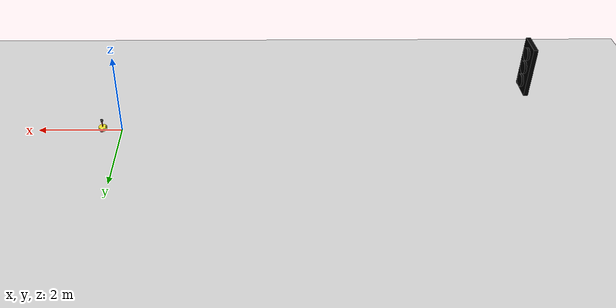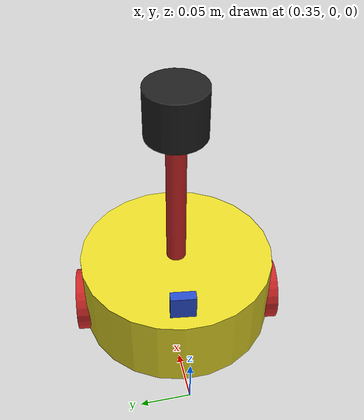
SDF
<sdf version="1.7">
 <world name="default">
  <light name="sun" type="directional">
   <pose>0 0 10 0 -0 0</pose>
   <diffuse>0.8 0.8 0.8 1</diffuse>
   <specular>0.2 0.2 0.2 1</specular>
   <attenuation>
    <range>1000</range>
    <constant>0.9</constant>
    <linear>0.01</linear>
    <quadratic>0.001</quadratic>
   </attenuation>
   <direction>-0.5 0.1 -0.9</direction>
   <spot><inner_angle>0</inner_angle><outer_angle>0</outer_angle><falloff>0</falloff></spot>
  </light>
  <model name="ground_plane">
   <static>1</static>
   <link name="link">
    <collision name="collision">
     <geometry><plane><normal>0 0 1</normal><size>100 100</size></plane></geometry>
     <surface>
      <contact><collide_bitmask>65535</collide_bitmask></contact>
      <friction><ode><mu>100</mu><mu2>50</mu2></ode></friction>
     </surface>
    </collision>
    <visual name="visual">
     <cast_shadows>0</cast_shadows>
     <geometry><plane><normal>0 0 1</normal><size>100 100</size></plane></geometry>
     <material>
      <script><uri>file://media/materials/scripts/gazebo.material</uri><name>Gazebo/Grey</name></script>
     </material>
    </visual>
   </link>
  </model>
  <model name="test_included_traffic_light">
   <pose>-9.4826 0.91443 1.16096 0.001062 -0.001055 -1e-05</pose>
   <plugin name="traffic_light_plugin" filename="libgazebo_traffic_light.so"/>
   <frame name="gazebo_traffic_light::__model__" attached_to="gazebo_traffic_light::light_fixture">
    <pose relative_to="__model__">0 -1 0 0 -0 0</pose>
   </frame>
   <static>0</static>
   <link name="gazebo_traffic_light::light_fixture">
    <gravity>0</gravity>
    <pose relative_to="gazebo_traffic_light::__model__">0 0 0 0 -0 0</pose>
    <visual name="visual">
     <pose>0 0 0.535 0 -0 0</pose>
     <geometry><box><size>0.1 0.6 1.2</size></box></geometry>
     <material><ambient>0 0 0 1</ambient><diffuse>0 0 0 1</diffuse><specular>0 0 0 1</specular></material>
    </visual>
    <collision name="collision">
     <pose>0 0 0.535 0 -0 0</pose>
     <geometry><box><size>0.1 0.6 1.2</size></box></geometry>
    </collision>
    <inertial>
     <inertia><ixx>1</ixx><ixy>0</ixy><ixz>0</ixz><iyy>1</iyy><iyz>0</iyz><izz>1</izz></inertia>
     <mass>1</mass>
    </inertial>
   </link>
   <link name="gazebo_traffic_light::green_off">
    <gravity>0</gravity>
    <pose relative_to="gazebo_traffic_light::__model__">0.075 0 0.175 0 1.5707 0</pose>
    <collision name="collision">
     <geometry><cylinder><radius>0.15</radius><length>0.05</length></cylinder></geometry>
    </collision>
    <visual name="visual">
     <geometry><cylinder><radius>0.15</radius><length>0.05</length></cylinder></geometry>
     <material>
      <ambient>0 1 0 1</ambient>
      <diffuse>0 0 0 1</diffuse>
      <specular>0 0 0 1</specular>
      <emissive>0 0 0 1</emissive>
     </material>
    </visual>
    <inertial>
     <inertia><ixx>1</ixx><ixy>0</ixy><ixz>0</ixz><iyy>1</iyy><iyz>0</iyz><izz>1</izz></inertia>
     <mass>1</mass>
    </inertial>
   </link>
   <link name="gazebo_traffic_light::green_on">
    <gravity>0</gravity>
    <pose relative_to="gazebo_traffic_light::__model__">0 0 0.175 0 1.5707 0</pose>
    <collision name="collision">
     <geometry><cylinder><radius>0.15</radius><length>0.002</length></cylinder></geometry>
    </collision>
    <visual name="visual">
     <geometry><cylinder><radius>0.15</radius><length>0.002</length></cylinder></geometry>
     <material>
      <ambient>0 0 0 1</ambient>
      <diffuse>0 0 0 1</diffuse>
      <specular>0 0 0 1</specular>
      <emissive>0 1 0 1</emissive>
     </material>
    </visual>
    <inertial>
     <inertia><ixx>1</ixx><ixy>0</ixy><ixz>0</ixz><iyy>1</iyy><iyz>0</iyz><izz>1</izz></inertia>
     <mass>1</mass>
    </inertial>
   </link>
   <link name="gazebo_traffic_light::yellow_off">
    <gravity>0</gravity>
    <pose relative_to="gazebo_traffic_light::__model__">0.075 0 0.525 0 1.5707 0</pose>
    <collision name="collision">
     <geometry><cylinder><radius>0.15</radius><length>0.05</length></cylinder></geometry>
    </collision>
    <visual name="visual">
     <geometry><cylinder><radius>0.15</radius><length>0.05</length></cylinder></geometry>
     <material>
      <ambient>1 1 0 1</ambient>
      <diffuse>0 0 0 1</diffuse>
      <specular>0 0 0 1</specular>
      <emissive>0 0 0 1</emissive>
     </material>
    </visual>
    <inertial>
     <inertia><ixx>1</ixx><ixy>0</ixy><ixz>0</ixz><iyy>1</iyy><iyz>0</iyz><izz>1</izz></inertia>
     <mass>1</mass>
    </inertial>
   </link>
   <link name="gazebo_traffic_light::yellow_on">
    <gravity>0</gravity>
    <pose relative_to="gazebo_traffic_light::__model__">0 0 0.525 0 1.5707 0</pose>
    <collision name="collision">
     <geometry><cylinder><radius>0.15</radius><length>0.002</length></cylinder></geometry>
    </collision>
    <visual name="visual">
     <geometry><cylinder><radius>0.15</radius><length>0.002</length></cylinder></geometry>
     <material>
      <ambient>0 0 0 1</ambient>
      <diffuse>0 0 0 1</diffuse>
      <specular>0 0 0 1</specular>
      <emissive>1 1 0 1</emissive>
     </material>
    </visual>
    <inertial>
     <inertia><ixx>1</ixx><ixy>0</ixy><ixz>0</ixz><iyy>1</iyy><iyz>0</iyz><izz>1</izz></inertia>
     <mass>1</mass>
    </inertial>
   </link>
   <link name="gazebo_traffic_light::red_off">
    <gravity>0</gravity>
    <pose relative_to="gazebo_traffic_light::__model__">0.075 0 0.875 0 1.5707 0</pose>
    <collision name="collision">
     <geometry><cylinder><radius>0.15</radius><length>0.05</length></cylinder></geometry>
    </collision>
    <visual name="visual">
     <geometry><cylinder><radius>0.15</radius><length>0.05</length></cylinder></geometry>
     <material>
      <ambient>1 0 0 1</ambient>
      <diffuse>0 0 0 1</diffuse>
      <specular>0 0 0 1</specular>
      <emissive>0 0 0 1</emissive>
     </material>
    </visual>
    <inertial>
     <inertia><ixx>1</ixx><ixy>0</ixy><ixz>0</ixz><iyy>1</iyy><iyz>0</iyz><izz>1</izz></inertia>
     <mass>1</mass>
    </inertial>
   </link>
   <link name="gazebo_traffic_light::red_on">
    <gravity>0</gravity>
    <pose relative_to="gazebo_traffic_light::__model__">0 0 0.875 0 1.5707 0</pose>
    <collision name="collision">
     <geometry><cylinder><radius>0.15</radius><length>0.002</length></cylinder></geometry>
    </collision>
    <visual name="visual">
     <geometry><cylinder><radius>0.15</radius><length>0.002</length></cylinder></geometry>
     <material>
      <ambient>0 0 0 1</ambient>
      <diffuse>0 0 0 1</diffuse>
      <specular>0 0 0 1</specular>
      <emissive>1 0 0 1</emissive>
     </material>
    </visual>
    <inertial>
     <inertia><ixx>1</ixx><ixy>0</ixy><ixz>0</ixz><iyy>1</iyy><iyz>0</iyz><izz>1</izz></inertia>
     <mass>1</mass>
    </inertial>
   </link>
   <joint name="gazebo_traffic_light::green_switch" type="prismatic">
    <parent>gazebo_traffic_light::green_off</parent>
    <child>gazebo_traffic_light::green_on</child>
    <axis>
     <xyz>0 0 1</xyz>
     <limit><lower>0</lower><upper>0.101</upper></limit>
     <dynamics><spring_reference>0</spring_reference><spring_stiffness>0</spring_stiffness></dynamics>
    </axis>
   </joint>
   <joint name="gazebo_traffic_light::green_base" type="fixed">
    <parent>gazebo_traffic_light::light_fixture</parent>
    <child>gazebo_traffic_light::green_off</child>
   </joint>
   <joint name="gazebo_traffic_light::yellow_switch" type="prismatic">
    <parent>gazebo_traffic_light::yellow_off</parent>
    <child>gazebo_traffic_light::yellow_on</child>
    <axis>
     <xyz>0 0 1</xyz>
     <limit><lower>0</lower><upper>0.101</upper></limit>
     <dynamics><spring_reference>0</spring_reference><spring_stiffness>0</spring_stiffness></dynamics>
    </axis>
   </joint>
   <joint name="gazebo_traffic_light::yellow_base" type="fixed">
    <parent>gazebo_traffic_light::light_fixture</parent>
    <child>gazebo_traffic_light::yellow_off</child>
   </joint>
   <joint name="gazebo_traffic_light::red_switch" type="prismatic">
    <parent>gazebo_traffic_light::red_off</parent>
    <child>gazebo_traffic_light::red_on</child>
    <axis>
     <xyz>0 0 1</xyz>
     <limit><lower>0</lower><upper>0.101</upper></limit>
     <dynamics><spring_reference>0</spring_reference><spring_stiffness>0</spring_stiffness></dynamics>
    </axis>
   </joint>
   <joint name="gazebo_traffic_light::red_base" type="fixed">
    <parent>gazebo_traffic_light::light_fixture</parent>
    <child>gazebo_traffic_light::red_off</child>
   </joint>
  </model>
  <gravity>0 0 -9.8</gravity>
  <magnetic_field>6e-06 2.3e-05 -4.2e-05</magnetic_field>
  <atmosphere type="adiabatic"/>
  <physics type="ode">
   <max_step_size>0.001</max_step_size>
   <real_time_factor>1</real_time_factor>
   <real_time_update_rate>1000</real_time_update_rate>
  </physics>
  <scene><ambient>0.4 0.4 0.4 1</ambient><background>0.7 0.7 0.7 1</background><shadows>1</shadows></scene>
  <spherical_coordinates>
   <surface_model>EARTH_WGS84</surface_model>
   <latitude_deg>0</latitude_deg>
   <longitude_deg>0</longitude_deg>
   <elevation>0</elevation>
   <heading_deg>0</heading_deg>
  </spherical_coordinates>
  <model name="mycar">
   <link name="base_footprint">
    <inertial>
     <pose>0.00125 0 0.083867 0 -0 0</pose>
     <mass>0.64</mass>
     <inertia>
      <ixx>0.00392376</ixx>
      <ixy>0</ixy>
      <ixz>-1.89062e-05</ixz>
      <iyy>0.00398676</iyy>
      <iyz>0</iyz>
      <izz>0.00258254</izz>
     </inertia>
    </inertial>
    <collision name="base_footprint_fixed_joint_lump__base_link_collision">
     <pose>0 0 0.055 0 -0 0</pose>
     <geometry><cylinder><length>0.08</length><radius>0.1</radius></cylinder></geometry>
    </collision>
    <collision name="base_footprint_fixed_joint_lump__camera_collision_1">
     <pose>0.08 0 0.1075 0 -0 0</pose>
     <geometry><box><size>0.01 0.025 0.025</size></box></geometry>
    </collision>
    <collision name="base_footprint_fixed_joint_lump__support_collision_2">
     <pose>0 0 0.17 0 -0 0</pose>
     <geometry><cylinder><length>0.15</length><radius>0.01</radius></cylinder></geometry>
    </collision>
    <collision name="base_footprint_fixed_joint_lump__laser_collision_3">
     <pose>0 0 0.27 0 -0 0</pose>
     <geometry><cylinder><length>0.05</length><radius>0.03</radius></cylinder></geometry>
    </collision>
    <visual name="base_footprint_visual"><geometry><sphere><radius>0.0001</radius></sphere></geometry></visual>
    <visual name="base_footprint_fixed_joint_lump__base_link_visual_1">
     <pose>0 0 0.055 0 -0 0</pose>
     <geometry><cylinder><length>0.08</length><radius>0.1</radius></cylinder></geometry>
     <material>
      <script><name>Gazebo/Yellow</name><uri>file://media/materials/scripts/gazebo.material</uri></script>
     </material>
    </visual>
    <visual name="base_footprint_fixed_joint_lump__camera_visual_2">
     <pose>0.08 0 0.1075 0 -0 0</pose>
     <geometry><box><size>0.01 0.025 0.025</size></box></geometry>
     <material>
      <script><name>Gazebo/Blue</name><uri>file://media/materials/scripts/gazebo.material</uri></script>
     </material>
    </visual>
    <visual name="base_footprint_fixed_joint_lump__support_visual_3">
     <pose>0 0 0.17 0 -0 0</pose>
     <geometry><cylinder><length>0.15</length><radius>0.01</radius></cylinder></geometry>
     <material>
      <script><name>Gazebo/Red</name><uri>file://media/materials/scripts/gazebo.material</uri></script>
     </material>
    </visual>
    <visual name="base_footprint_fixed_joint_lump__laser_visual_4">
     <pose>0 0 0.27 0 -0 0</pose>
     <geometry><cylinder><length>0.05</length><radius>0.03</radius></cylinder></geometry>
     <material>
      <script><name>Gazebo/Black</name><uri>file://media/materials/scripts/gazebo.material</uri></script>
     </material>
    </visual>
    <sensor name="camera_node" type="camera">
     <update_rate>2</update_rate>
     <camera name="head">
      <horizontal_fov>1.39626</horizontal_fov>
      <image><width>1280</width><height>720</height><format>R8G8B8</format></image>
      <clip><near>0.02</near><far>300</far></clip>
      <noise><type>gaussian</type><mean>0</mean><stddev>0.007</stddev></noise>
     </camera>
     <plugin name="gazebo_camera" filename="libgazebo_ros_camera.so">
      <alwaysOn>1</alwaysOn>
      <updateRate>0.0</updateRate>
      <cameraName>/camera</cameraName>
      <imageTopicName>image_raw</imageTopicName>
      <cameraInfoTopicName>camera_info</cameraInfoTopicName>
      <frameName>camera</frameName>
      <hackBaseline>0.07</hackBaseline>
      <distortionK1>0.0</distortionK1>
      <distortionK2>0.0</distortionK2>
      <distortionK3>0.0</distortionK3>
      <distortionT1>0.0</distortionT1>
      <distortionT2>0.0</distortionT2>
      <robotNamespace>/</robotNamespace>
     </plugin>
     <pose>0.08 0 0.1075 0 -0 0</pose>
    </sensor>
    <sensor name="camera" type="depth">
     <always_on>1</always_on>
     <update_rate>20</update_rate>
     <camera>
      <horizontal_fov>1.0472</horizontal_fov>
      <image><format>R8G8B8</format><width>640</width><height>480</height></image>
      <clip><near>0.05</near><far>8</far></clip>
     </camera>
     <plugin name="kinect_camera_controller" filename="libgazebo_ros_openni_kinect.so">
      <cameraName>camera</cameraName>
      <alwaysOn>1</alwaysOn>
      <updateRate>10</updateRate>
      <imageTopicName>rgb/image_raw</imageTopicName>
      <depthImageTopicName>depth/image_raw</depthImageTopicName>
      <pointCloudTopicName>depth/points</pointCloudTopicName>
      <cameraInfoTopicName>rgb/camera_info</cameraInfoTopicName>
      <depthImageCameraInfoTopicName>depth/camera_info</depthImageCameraInfoTopicName>
      <frameName>support_depth</frameName>
      <baseline>0.1</baseline>
      <distortion_k1>0.0</distortion_k1>
      <distortion_k2>0.0</distortion_k2>
      <distortion_k3>0.0</distortion_k3>
      <distortion_t1>0.0</distortion_t1>
      <distortion_t2>0.0</distortion_t2>
      <pointCloudCutoff>0.4</pointCloudCutoff>
      <robotNamespace>/</robotNamespace>
     </plugin>
     <pose>0 0 0.17 0 -0 0</pose>
    </sensor>
    <sensor name="rplidar" type="ray">
     <visualize>1</visualize>
     <update_rate>5.5</update_rate>
     <ray>
      <scan>
       <horizontal>
        <samples>360</samples>
        <resolution>3</resolution>
        <min_angle>-3</min_angle>
        <max_angle>1</max_angle>
       </horizontal>
       <vertical><samples>1</samples><min_angle>0</min_angle><max_angle>0</max_angle></vertical>
      </scan>
      <range><min>0.1</min><max>30</max><resolution>0.01</resolution></range>
      <noise><type>gaussian</type><mean>0</mean><stddev>0.01</stddev></noise>
     </ray>
     <plugin name="gazebo_rplidar" filename="libgazebo_ros_laser.so">
      <topicName>/scan</topicName>
      <frameName>laser</frameName>
      <robotNamespace>/</robotNamespace>
     </plugin>
     <pose>0 0 0.27 0 -0 0</pose>
    </sensor>
   </link>
   <joint name="back2link" type="revolute">
    <pose relative_to="base_footprint">-0.08 0 0.0075 0 -0 0</pose>
    <parent>base_footprint</parent>
    <child>back_wheel</child>
    <axis>
     <xyz>0 1 0</xyz>
     <limit><lower>-1e+16</lower><upper>1e+16</upper></limit>
     <dynamics><spring_reference>0</spring_reference><spring_stiffness>0</spring_stiffness></dynamics>
    </axis>
   </joint>
   <link name="back_wheel">
    <pose relative_to="back2link">0 0 0 0 -0 0</pose>
    <inertial>
     <mass>0.01</mass>
     <inertia>
      <ixx>2.25e-07</ixx>
      <ixy>0</ixy>
      <ixz>0</ixz>
      <iyy>2.25e-07</iyy>
      <iyz>0</iyz>
      <izz>2.25e-07</izz>
     </inertia>
    </inertial>
    <collision name="back_wheel_collision">
     <geometry><sphere><radius>0.0075</radius></sphere></geometry>
    </collision>
    <visual name="back_wheel_visual">
     <geometry><sphere><radius>0.0075</radius></sphere></geometry>
     <material>
      <script><name>Gazebo/Red</name><uri>file://media/materials/scripts/gazebo.material</uri></script>
     </material>
    </visual>
   </link>
   <joint name="front2link" type="revolute">
    <pose relative_to="base_footprint">0.08 0 0.0075 0 -0 0</pose>
    <parent>base_footprint</parent>
    <child>front_wheel</child>
    <axis>
     <xyz>0 1 0</xyz>
     <limit><lower>-1e+16</lower><upper>1e+16</upper></limit>
     <dynamics><spring_reference>0</spring_reference><spring_stiffness>0</spring_stiffness></dynamics>
    </axis>
   </joint>
   <link name="front_wheel">
    <pose relative_to="front2link">0 0 0 0 -0 0</pose>
    <inertial>
     <mass>0.01</mass>
     <inertia>
      <ixx>2.25e-07</ixx>
      <ixy>0</ixy>
      <ixz>0</ixz>
      <iyy>2.25e-07</iyy>
      <iyz>0</iyz>
      <izz>2.25e-07</izz>
     </inertia>
    </inertial>
    <collision name="front_wheel_collision">
     <geometry><sphere><radius>0.0075</radius></sphere></geometry>
    </collision>
    <visual name="front_wheel_visual">
     <geometry><sphere><radius>0.0075</radius></sphere></geometry>
     <material>
      <script><name>Gazebo/Red</name><uri>file://media/materials/scripts/gazebo.material</uri></script>
     </material>
    </visual>
   </link>
   <joint name="left2link" type="revolute">
    <pose relative_to="base_footprint">0 0.1 0.0325 0 -0 0</pose>
    <parent>base_footprint</parent>
    <child>left_wheel</child>
    <axis>
     <xyz>0 1 0</xyz>
     <limit><lower>-1e+16</lower><upper>1e+16</upper></limit>
     <dynamics><spring_reference>0</spring_reference><spring_stiffness>0</spring_stiffness></dynamics>
    </axis>
   </joint>
   <link name="left_wheel">
    <pose relative_to="left2link">0 0 0 0 -0 0</pose>
    <inertial>
     <mass>0.05</mass>
     <inertia>
      <ixx>1.41406e-05</ixx>
      <ixy>0</ixy>
      <ixz>0</ixz>
      <iyy>1.41406e-05</iyy>
      <iyz>0</iyz>
      <izz>2.64063e-05</izz>
     </inertia>
    </inertial>
    <collision name="left_wheel_collision">
     <pose>0 0 0 1.5708 -0 0</pose>
     <geometry><cylinder><length>0.015</length><radius>0.0325</radius></cylinder></geometry>
    </collision>
    <visual name="left_wheel_visual">
     <pose>0 0 0 1.5708 -0 0</pose>
     <geometry><cylinder><length>0.015</length><radius>0.0325</radius></cylinder></geometry>
     <material>
      <script><name>Gazebo/Red</name><uri>file://media/materials/scripts/gazebo.material</uri></script>
     </material>
    </visual>
   </link>
   <joint name="right2link" type="revolute">
    <pose relative_to="base_footprint">0 -0.1 0.0325 0 -0 0</pose>
    <parent>base_footprint</parent>
    <child>right_wheel</child>
    <axis>
     <xyz>0 1 0</xyz>
     <limit><lower>-1e+16</lower><upper>1e+16</upper></limit>
     <dynamics><spring_reference>0</spring_reference><spring_stiffness>0</spring_stiffness></dynamics>
    </axis>
   </joint>
   <link name="right_wheel">
    <pose relative_to="right2link">0 0 0 0 -0 0</pose>
    <inertial>
     <mass>0.05</mass>
     <inertia>
      <ixx>1.41406e-05</ixx>
      <ixy>0</ixy>
      <ixz>0</ixz>
      <iyy>1.41406e-05</iyy>
      <iyz>0</iyz>
      <izz>2.64063e-05</izz>
     </inertia>
    </inertial>
    <collision name="right_wheel_collision">
     <pose>0 0 0 1.5708 -0 0</pose>
     <geometry><cylinder><length>0.015</length><radius>0.0325</radius></cylinder></geometry>
    </collision>
    <visual name="right_wheel_visual">
     <pose>0 0 0 1.5708 -0 0</pose>
     <geometry><cylinder><length>0.015</length><radius>0.0325</radius></cylinder></geometry>
     <material>
      <script><name>Gazebo/Red</name><uri>file://media/materials/scripts/gazebo.material</uri></script>
     </material>
    </visual>
   </link>
   <static>0</static>
   <plugin name="differential_drive_controller" filename="libgazebo_ros_diff_drive.so">
    <rosDebugLevel>Debug</rosDebugLevel>
    <publishWheelTF>0</publishWheelTF>
    <robotNamespace>/</robotNamespace>
    <publishTf>1</publishTf>
    <publishWheelJointState>0</publishWheelJointState>
    <alwaysOn>1</alwaysOn>
    <updateRate>100.0</updateRate>
    <legacyMode>1</legacyMode>
    <leftJoint>left2link</leftJoint>
    <rightJoint>right2link</rightJoint>
    <wheelSeparation>0.2</wheelSeparation>
    <wheelDiameter>0.065</wheelDiameter>
    <broadcastTF>1</broadcastTF>
    <wheelTorque>30</wheelTorque>
    <wheelAcceleration>1.8</wheelAcceleration>
    <commandTopic>cmd_vel</commandTopic>
    <odometryFrame>odom</odometryFrame>
    <odometryTopic>odom</odometryTopic>
    <robotBaseFrame>base_footprint</robotBaseFrame>
   </plugin>
   <pose>0.459292 -0.009678 0 0 -4e-06 3.01002</pose>
  </model>
 </world>
</sdf>
